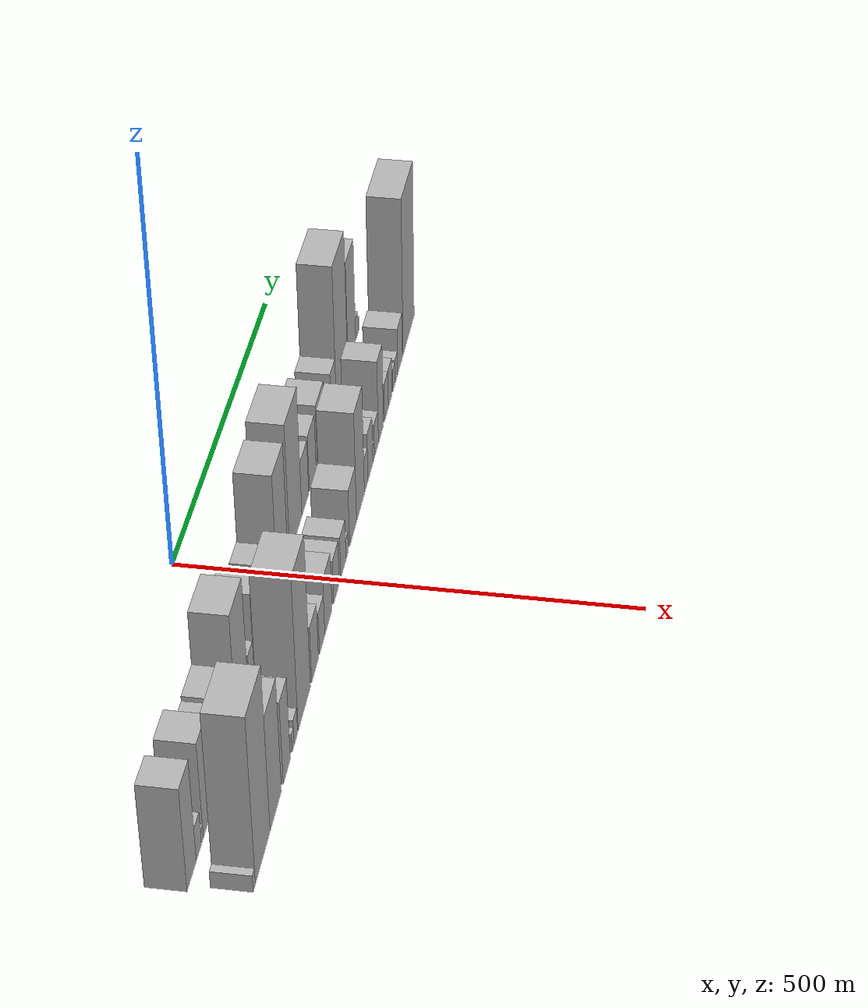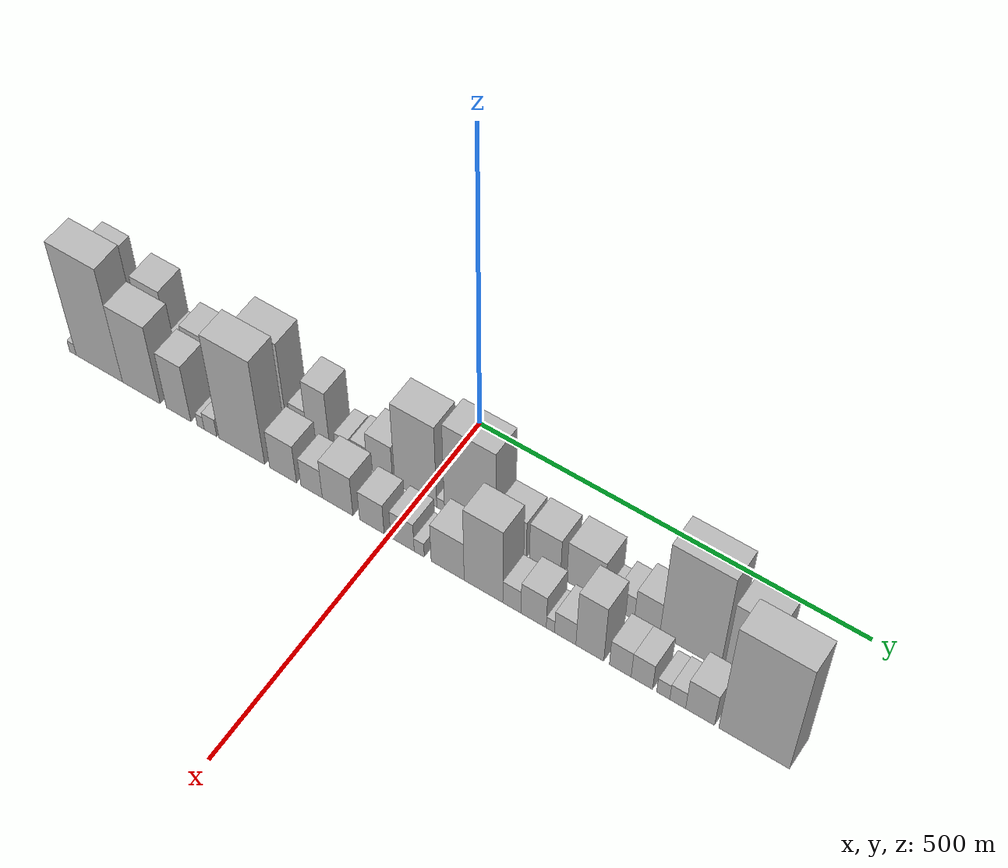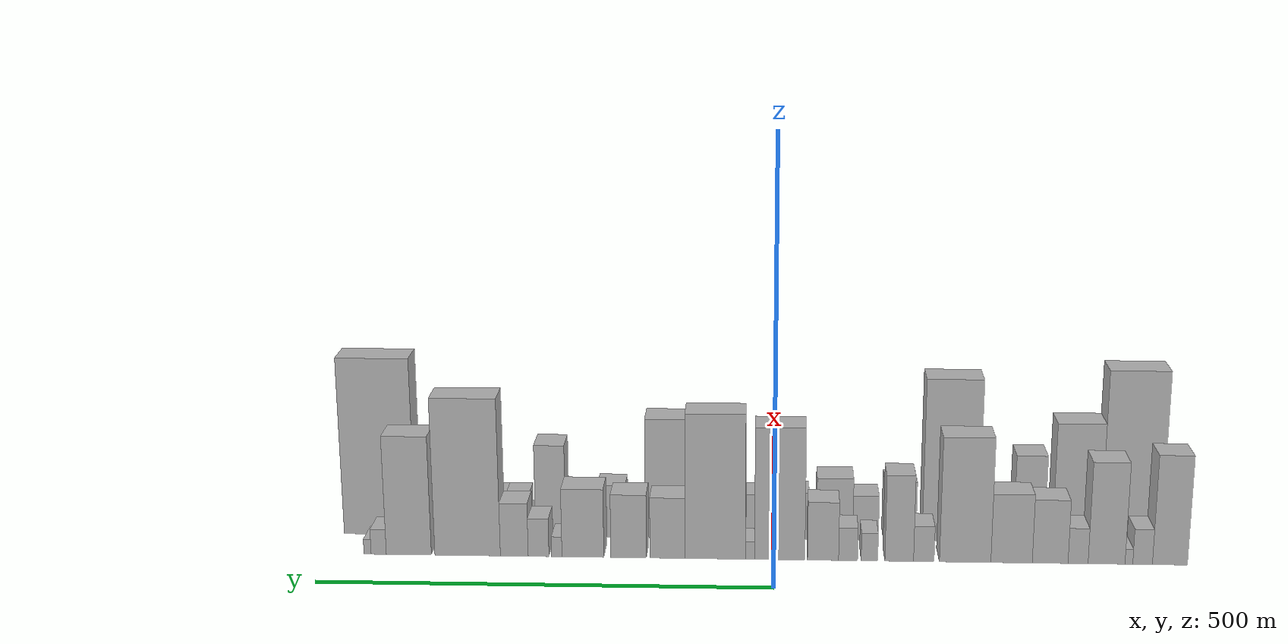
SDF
<sdf version="1.6">
 <world name="default">
  <scene>
   <sky><clouds><speed>12</speed></clouds></sky>
   <ambient>0.4 0.4 0.4 1</ambient>
   <background>0.7 0.7 0.7 1</background>
   <shadows>1</shadows>
  </scene>
  <gravity>0 0 -9.8066</gravity>
  <magnetic_field>6e-06 2.3e-05 -4.2e-05</magnetic_field>
  <physics default="0" name="default_physics" type="ode">
   <ode>
    <solver>
     <type>quick</type>
     <iters>10</iters>
     <sor>1.0</sor>
     <use_dynamic_moi_rescaling>0</use_dynamic_moi_rescaling>
    </solver>
    <constraints>
     <cfm>0</cfm>
     <erp>0.2</erp>
     <contact_max_correcting_vel>100</contact_max_correcting_vel>
     <contact_surface_layer>0.001</contact_surface_layer>
    </constraints>
   </ode>
   <max_step_size>0.004</max_step_size>
   <real_time_factor>1</real_time_factor>
   <real_time_update_rate>250</real_time_update_rate>
  </physics>
  <light name="sun" type="directional">
   <pose>0 0 10 0 0 0</pose>
   <diffuse>0.8 0.8 0.8 1</diffuse>
   <specular>0.2 0.2 0.2 1</specular>
   <attenuation>
    <range>1000</range>
    <constant>0.9</constant>
    <linear>0.01</linear>
    <quadratic>0.001</quadratic>
   </attenuation>
   <direction>-0.5 0.1 -0.9</direction>
  </light>
  <model name="building_1">
   <static>1</static>
   <pose>100.0000 -440.6340 0 0.000000 0.000000 0.000000</pose>
   <link name="link">
    <pose>0 0 64.50 0 0 0</pose>
    <collision name="collision"><geometry><box><size>40.0000 38.7319 129.0000</size></box></geometry></collision>
    <visual name="visual">
     <cast_shadows>0</cast_shadows>
     <geometry><box><size>40.0000 38.7319 129.0000</size></box></geometry>
     <material>
      <script>
       <uri>model://HANNAS_wall/materials/scripts</uri>
       <uri>model://HANNAS_wall/materials/textures</uri>
       <name>vrc/HANNAS_wall</name>
      </script>
     </material>
    </visual>
   </link>
  </model>
  <model name="building_2">
   <static>1</static>
   <pose>100.0000 -410.3808 0 0.000000 0.000000 0.000000</pose>
   <link name="link">
    <pose>0 0 21.00 0 0 0</pose>
    <collision name="collision"><geometry><box><size>40.0000 21.7745 42.0000</size></box></geometry></collision>
    <visual name="visual">
     <cast_shadows>0</cast_shadows>
     <geometry><box><size>40.0000 21.7745 42.0000</size></box></geometry>
     <material>
      <script>
       <uri>model://HANNAS_wall/materials/scripts</uri>
       <uri>model://HANNAS_wall/materials/textures</uri>
       <name>vrc/HANNAS_wall</name>
      </script>
     </material>
    </visual>
   </link>
  </model>
  <model name="building_3">
   <static>1</static>
   <pose>100.0000 -395.1985 0 0.000000 0.000000 0.000000</pose>
   <link name="link">
    <pose>0 0 9.00 0 0 0</pose>
    <collision name="collision"><geometry><box><size>40.0000 8.5901 18.0000</size></box></geometry></collision>
    <visual name="visual">
     <cast_shadows>0</cast_shadows>
     <geometry><box><size>40.0000 8.5901 18.0000</size></box></geometry>
     <material>
      <script>
       <uri>model://HANNAS_wall/materials/scripts</uri>
       <uri>model://HANNAS_wall/materials/textures</uri>
       <name>vrc/HANNAS_wall</name>
      </script>
     </material>
    </visual>
   </link>
  </model>
  <model name="building_4">
   <static>1</static>
   <pose>100.0000 -370.4137 0 0.000000 0.000000 0.000000</pose>
   <link name="link">
    <pose>0 0 60.00 0 0 0</pose>
    <collision name="collision"><geometry><box><size>40.0000 40.9796 120.0000</size></box></geometry></collision>
    <visual name="visual">
     <cast_shadows>0</cast_shadows>
     <geometry><box><size>40.0000 40.9796 120.0000</size></box></geometry>
     <material>
      <script>
       <uri>model://HANNAS_wall/materials/scripts</uri>
       <uri>model://HANNAS_wall/materials/textures</uri>
       <name>vrc/HANNAS_wall</name>
      </script>
     </material>
    </visual>
   </link>
  </model>
  <model name="building_5">
   <static>1</static>
   <pose>100.0000 -338.7981 0 0.000000 0.000000 0.000000</pose>
   <link name="link">
    <pose>0 0 21.00 0 0 0</pose>
    <collision name="collision"><geometry><box><size>40.0000 22.2516 42.0000</size></box></geometry></collision>
    <visual name="visual">
     <cast_shadows>0</cast_shadows>
     <geometry><box><size>40.0000 22.2516 42.0000</size></box></geometry>
     <material>
      <script>
       <uri>model://HANNAS_wall/materials/scripts</uri>
       <uri>model://HANNAS_wall/materials/textures</uri>
       <name>vrc/HANNAS_wall</name>
      </script>
     </material>
    </visual>
   </link>
  </model>
  <model name="building_6">
   <static>1</static>
   <pose>100.0000 -307.7924 0 0.000000 0.000000 0.000000</pose>
   <link name="link">
    <pose>0 0 37.50 0 0 0</pose>
    <collision name="collision"><geometry><box><size>40.0000 39.7598 75.0000</size></box></geometry></collision>
    <visual name="visual">
     <cast_shadows>0</cast_shadows>
     <geometry><box><size>40.0000 39.7598 75.0000</size></box></geometry>
     <material>
      <script>
       <uri>model://HANNAS_wall/materials/scripts</uri>
       <uri>model://HANNAS_wall/materials/textures</uri>
       <name>vrc/HANNAS_wall</name>
      </script>
     </material>
    </visual>
   </link>
  </model>
  <model name="building_7">
   <static>1</static>
   <pose>100.0000 -264.8950 0 0.000000 0.000000 0.000000</pose>
   <link name="link">
    <pose>0 0 40.50 0 0 0</pose>
    <collision name="collision"><geometry><box><size>40.0000 46.0350 81.0000</size></box></geometry></collision>
    <visual name="visual">
     <cast_shadows>0</cast_shadows>
     <geometry><box><size>40.0000 46.0350 81.0000</size></box></geometry>
     <material>
      <script>
       <uri>model://HANNAS_wall/materials/scripts</uri>
       <uri>model://HANNAS_wall/materials/textures</uri>
       <name>vrc/HANNAS_wall</name>
      </script>
     </material>
    </visual>
   </link>
  </model>
  <model name="building_8">
   <static>1</static>
   <pose>100.0000 -213.2292 0 0.000000 0.000000 0.000000</pose>
   <link name="link">
    <pose>0 0 73.50 0 0 0</pose>
    <collision name="collision"><geometry><box><size>40.0000 57.2965 147.0000</size></box></geometry></collision>
    <visual name="visual">
     <cast_shadows>0</cast_shadows>
     <geometry><box><size>40.0000 57.2965 147.0000</size></box></geometry>
     <material>
      <script>
       <uri>model://HANNAS_wall/materials/scripts</uri>
       <uri>model://HANNAS_wall/materials/textures</uri>
       <name>vrc/HANNAS_wall</name>
      </script>
     </material>
    </visual>
   </link>
  </model>
  <model name="building_9">
   <static>1</static>
   <pose>100.0000 -167.1138 0 0.000000 0.000000 0.000000</pose>
   <link name="link">
    <pose>0 0 21.00 0 0 0</pose>
    <collision name="collision"><geometry><box><size>40.0000 22.9344 42.0000</size></box></geometry></collision>
    <visual name="visual">
     <cast_shadows>0</cast_shadows>
     <geometry><box><size>40.0000 22.9344 42.0000</size></box></geometry>
     <material>
      <script>
       <uri>model://HANNAS_wall/materials/scripts</uri>
       <uri>model://HANNAS_wall/materials/textures</uri>
       <name>vrc/HANNAS_wall</name>
      </script>
     </material>
    </visual>
   </link>
  </model>
  <model name="building_10">
   <static>1</static>
   <pose>100.0000 -139.6619 0 0.000000 0.000000 0.000000</pose>
   <link name="link">
    <pose>0 0 51.00 0 0 0</pose>
    <collision name="collision"><geometry><box><size>40.0000 31.9693 102.0000</size></box></geometry></collision>
    <visual name="visual">
     <cast_shadows>0</cast_shadows>
     <geometry><box><size>40.0000 31.9693 102.0000</size></box></geometry>
     <material>
      <script>
       <uri>model://HANNAS_wall/materials/scripts</uri>
       <uri>model://HANNAS_wall/materials/textures</uri>
       <name>vrc/HANNAS_wall</name>
      </script>
     </material>
    </visual>
   </link>
  </model>
  <model name="building_11">
   <static>1</static>
   <pose>100.0000 -106.4075 0 0.000000 0.000000 0.000000</pose>
   <link name="link">
    <pose>0 0 16.50 0 0 0</pose>
    <collision name="collision"><geometry><box><size>40.0000 18.5395 33.0000</size></box></geometry></collision>
    <visual name="visual">
     <cast_shadows>0</cast_shadows>
     <geometry><box><size>40.0000 18.5395 33.0000</size></box></geometry>
     <material>
      <script>
       <uri>model://HANNAS_wall/materials/scripts</uri>
       <uri>model://HANNAS_wall/materials/textures</uri>
       <name>vrc/HANNAS_wall</name>
      </script>
     </material>
    </visual>
   </link>
  </model>
  <model name="building_12">
   <static>1</static>
   <pose>100.0000 -82.4804 0 0.000000 0.000000 0.000000</pose>
   <link name="link">
    <pose>0 0 19.50 0 0 0</pose>
    <collision name="collision"><geometry><box><size>40.0000 21.3147 39.0000</size></box></geometry></collision>
    <visual name="visual">
     <cast_shadows>0</cast_shadows>
     <geometry><box><size>40.0000 21.3147 39.0000</size></box></geometry>
     <material>
      <script>
       <uri>model://HANNAS_wall/materials/scripts</uri>
       <uri>model://HANNAS_wall/materials/textures</uri>
       <name>vrc/HANNAS_wall</name>
      </script>
     </material>
    </visual>
   </link>
  </model>
  <model name="building_13">
   <static>1</static>
   <pose>100.0000 -54.4286 0 0.000000 0.000000 0.000000</pose>
   <link name="link">
    <pose>0 0 34.50 0 0 0</pose>
    <collision name="collision"><geometry><box><size>40.0000 34.7890 69.0000</size></box></geometry></collision>
    <visual name="visual">
     <cast_shadows>0</cast_shadows>
     <geometry><box><size>40.0000 34.7890 69.0000</size></box></geometry>
     <material>
      <script>
       <uri>model://HANNAS_wall/materials/scripts</uri>
       <uri>model://HANNAS_wall/materials/textures</uri>
       <name>vrc/HANNAS_wall</name>
      </script>
     </material>
    </visual>
   </link>
  </model>
  <model name="building_14">
   <static>1</static>
   <pose>100.0000 -5.8567 0 0.000000 0.000000 0.000000</pose>
   <link name="link">
    <pose>0 0 78.00 0 0 0</pose>
    <collision name="collision"><geometry><box><size>40.0000 56.3547 156.0000</size></box></geometry></collision>
    <visual name="visual">
     <cast_shadows>0</cast_shadows>
     <geometry><box><size>40.0000 56.3547 156.0000</size></box></geometry>
     <material>
      <script>
       <uri>model://HANNAS_wall/materials/scripts</uri>
       <uri>model://HANNAS_wall/materials/textures</uri>
       <name>vrc/HANNAS_wall</name>
      </script>
     </material>
    </visual>
   </link>
  </model>
  <model name="building_15">
   <static>1</static>
   <pose>100.0000 27.5183 0 0.000000 0.000000 0.000000</pose>
   <link name="link">
    <pose>0 0 10.50 0 0 0</pose>
    <collision name="collision"><geometry><box><size>40.0000 10.3953 21.0000</size></box></geometry></collision>
    <visual name="visual">
     <cast_shadows>0</cast_shadows>
     <geometry><box><size>40.0000 10.3953 21.0000</size></box></geometry>
     <material>
      <script>
       <uri>model://HANNAS_wall/materials/scripts</uri>
       <uri>model://HANNAS_wall/materials/textures</uri>
       <name>vrc/HANNAS_wall</name>
      </script>
     </material>
    </visual>
   </link>
  </model>
  <model name="building_16">
   <static>1</static>
   <pose>100.0000 66.5081 0 0.000000 0.000000 0.000000</pose>
   <link name="link">
    <pose>0 0 85.50 0 0 0</pose>
    <collision name="collision"><geometry><box><size>40.0000 67.5843 171.0000</size></box></geometry></collision>
    <visual name="visual">
     <cast_shadows>0</cast_shadows>
     <geometry><box><size>40.0000 67.5843 171.0000</size></box></geometry>
     <material>
      <script>
       <uri>model://HANNAS_wall/materials/scripts</uri>
       <uri>model://HANNAS_wall/materials/textures</uri>
       <name>vrc/HANNAS_wall</name>
      </script>
     </material>
    </visual>
   </link>
  </model>
  <model name="building_17">
   <static>1</static>
   <pose>100.0000 120.1196 0 0.000000 0.000000 0.000000</pose>
   <link name="link">
    <pose>0 0 36.00 0 0 0</pose>
    <collision name="collision"><geometry><box><size>40.0000 39.6385 72.0000</size></box></geometry></collision>
    <visual name="visual">
     <cast_shadows>0</cast_shadows>
     <geometry><box><size>40.0000 39.6385 72.0000</size></box></geometry>
     <material>
      <script>
       <uri>model://HANNAS_wall/materials/scripts</uri>
       <uri>model://HANNAS_wall/materials/textures</uri>
       <name>vrc/HANNAS_wall</name>
      </script>
     </material>
    </visual>
   </link>
  </model>
  <model name="building_18">
   <static>1</static>
   <pose>100.0000 163.9868 0 0.000000 0.000000 0.000000</pose>
   <link name="link">
    <pose>0 0 37.50 0 0 0</pose>
    <collision name="collision"><geometry><box><size>40.0000 40.0959 75.0000</size></box></geometry></collision>
    <visual name="visual">
     <cast_shadows>0</cast_shadows>
     <geometry><box><size>40.0000 40.0959 75.0000</size></box></geometry>
     <material>
      <script>
       <uri>model://HANNAS_wall/materials/scripts</uri>
       <uri>model://HANNAS_wall/materials/textures</uri>
       <name>vrc/HANNAS_wall</name>
      </script>
     </material>
    </visual>
   </link>
  </model>
  <model name="building_19">
   <static>1</static>
   <pose>100.0000 215.6951 0 0.000000 0.000000 0.000000</pose>
   <link name="link">
    <pose>0 0 40.50 0 0 0</pose>
    <collision name="collision"><geometry><box><size>40.0000 47.3208 81.0000</size></box></geometry></collision>
    <visual name="visual">
     <cast_shadows>0</cast_shadows>
     <geometry><box><size>40.0000 47.3208 81.0000</size></box></geometry>
     <material>
      <script>
       <uri>model://HANNAS_wall/materials/scripts</uri>
       <uri>model://HANNAS_wall/materials/textures</uri>
       <name>vrc/HANNAS_wall</name>
      </script>
     </material>
    </visual>
   </link>
  </model>
  <model name="building_20">
   <static>1</static>
   <pose>100.0000 245.2109 0 0.000000 0.000000 0.000000</pose>
   <link name="link">
    <pose>0 0 12.00 0 0 0</pose>
    <collision name="collision"><geometry><box><size>40.0000 11.7108 24.0000</size></box></geometry></collision>
    <visual name="visual">
     <cast_shadows>0</cast_shadows>
     <geometry><box><size>40.0000 11.7108 24.0000</size></box></geometry>
     <material>
      <script>
       <uri>model://HANNAS_wall/materials/scripts</uri>
       <uri>model://HANNAS_wall/materials/textures</uri>
       <name>vrc/HANNAS_wall</name>
      </script>
     </material>
    </visual>
   </link>
  </model>
  <model name="building_21">
   <static>1</static>
   <pose>100.0000 265.7919 0 0.000000 0.000000 0.000000</pose>
   <link name="link">
    <pose>0 0 22.50 0 0 0</pose>
    <collision name="collision"><geometry><box><size>40.0000 23.4512 45.0000</size></box></geometry></collision>
    <visual name="visual">
     <cast_shadows>0</cast_shadows>
     <geometry><box><size>40.0000 23.4512 45.0000</size></box></geometry>
     <material>
      <script>
       <uri>model://HANNAS_wall/materials/scripts</uri>
       <uri>model://HANNAS_wall/materials/textures</uri>
       <name>vrc/HANNAS_wall</name>
      </script>
     </material>
    </visual>
   </link>
  </model>
  <model name="building_22">
   <static>1</static>
   <pose>100.0000 293.2767 0 0.000000 0.000000 0.000000</pose>
   <link name="link">
    <pose>0 0 31.50 0 0 0</pose>
    <collision name="collision"><geometry><box><size>40.0000 31.5184 63.0000</size></box></geometry></collision>
    <visual name="visual">
     <cast_shadows>0</cast_shadows>
     <geometry><box><size>40.0000 31.5184 63.0000</size></box></geometry>
     <material>
      <script>
       <uri>model://HANNAS_wall/materials/scripts</uri>
       <uri>model://HANNAS_wall/materials/textures</uri>
       <name>vrc/HANNAS_wall</name>
      </script>
     </material>
    </visual>
   </link>
  </model>
  <model name="building_23">
   <static>1</static>
   <pose>100.0000 346.1778 0 0.000000 0.000000 0.000000</pose>
   <link name="link">
    <pose>0 0 93.00 0 0 0</pose>
    <collision name="collision"><geometry><box><size>40.0000 74.2838 186.0000</size></box></geometry></collision>
    <visual name="visual">
     <cast_shadows>0</cast_shadows>
     <geometry><box><size>40.0000 74.2838 186.0000</size></box></geometry>
     <material>
      <script>
       <uri>model://HANNAS_wall/materials/scripts</uri>
       <uri>model://HANNAS_wall/materials/textures</uri>
       <name>vrc/HANNAS_wall</name>
      </script>
     </material>
    </visual>
   </link>
  </model>
  <model name="building_24">
   <static>1</static>
   <pose>100.0000 412.9397 0 0.000000 0.000000 0.000000</pose>
   <link name="link">
    <pose>0 0 70.50 0 0 0</pose>
    <collision name="collision"><geometry><box><size>40.0000 51.2400 141.0000</size></box></geometry></collision>
    <visual name="visual">
     <cast_shadows>0</cast_shadows>
     <geometry><box><size>40.0000 51.2400 141.0000</size></box></geometry>
     <material>
      <script>
       <uri>model://HANNAS_wall/materials/scripts</uri>
       <uri>model://HANNAS_wall/materials/textures</uri>
       <name>vrc/HANNAS_wall</name>
      </script>
     </material>
    </visual>
   </link>
  </model>
  <model name="building_25">
   <static>1</static>
   <pose>100.0000 447.2016 0 0.000000 0.000000 0.000000</pose>
   <link name="link">
    <pose>0 0 15.00 0 0 0</pose>
    <collision name="collision"><geometry><box><size>40.0000 17.2837 30.0000</size></box></geometry></collision>
    <visual name="visual">
     <cast_shadows>0</cast_shadows>
     <geometry><box><size>40.0000 17.2837 30.0000</size></box></geometry>
     <material>
      <script>
       <uri>model://HANNAS_wall/materials/scripts</uri>
       <uri>model://HANNAS_wall/materials/textures</uri>
       <name>vrc/HANNAS_wall</name>
      </script>
     </material>
    </visual>
   </link>
  </model>
  <model name="building_26">
   <static>1</static>
   <pose>100.0000 459.8907 0 0.000000 0.000000 0.000000</pose>
   <link name="link">
    <pose>0 0 9.00 0 0 0</pose>
    <collision name="collision"><geometry><box><size>40.0000 8.0946 18.0000</size></box></geometry></collision>
    <visual name="visual">
     <cast_shadows>0</cast_shadows>
     <geometry><box><size>40.0000 8.0946 18.0000</size></box></geometry>
     <material>
      <script>
       <uri>model://HANNAS_wall/materials/scripts</uri>
       <uri>model://HANNAS_wall/materials/textures</uri>
       <name>vrc/HANNAS_wall</name>
      </script>
     </material>
    </visual>
   </link>
  </model>
  <model name="building_27">
   <static>1</static>
   <pose>160.0000 -447.1435 0 0.000000 0.000000 0.000000</pose>
   <link name="link">
    <pose>0 0 10.50 0 0 0</pose>
    <collision name="collision"><geometry><box><size>40.0000 9.7131 21.0000</size></box></geometry></collision>
    <visual name="visual">
     <cast_shadows>0</cast_shadows>
     <geometry><box><size>40.0000 9.7131 21.0000</size></box></geometry>
     <material>
      <script>
       <uri>model://HANNAS_wall/materials/scripts</uri>
       <uri>model://HANNAS_wall/materials/textures</uri>
       <name>vrc/HANNAS_wall</name>
      </script>
     </material>
    </visual>
   </link>
  </model>
  <model name="building_28">
   <static>1</static>
   <pose>160.0000 -407.9220 0 0.000000 0.000000 0.000000</pose>
   <link name="link">
    <pose>0 0 103.50 0 0 0</pose>
    <collision name="collision"><geometry><box><size>40.0000 68.7298 207.0000</size></box></geometry></collision>
    <visual name="visual">
     <cast_shadows>0</cast_shadows>
     <geometry><box><size>40.0000 68.7298 207.0000</size></box></geometry>
     <material>
      <script>
       <uri>model://HANNAS_wall/materials/scripts</uri>
       <uri>model://HANNAS_wall/materials/textures</uri>
       <name>vrc/HANNAS_wall</name>
      </script>
     </material>
    </visual>
   </link>
  </model>
  <model name="building_29">
   <static>1</static>
   <pose>160.0000 -346.0735 0 0.000000 0.000000 0.000000</pose>
   <link name="link">
    <pose>0 0 72.00 0 0 0</pose>
    <collision name="collision"><geometry><box><size>40.0000 54.9673 144.0000</size></box></geometry></collision>
    <visual name="visual">
     <cast_shadows>0</cast_shadows>
     <geometry><box><size>40.0000 54.9673 144.0000</size></box></geometry>
     <material>
      <script>
       <uri>model://HANNAS_wall/materials/scripts</uri>
       <uri>model://HANNAS_wall/materials/textures</uri>
       <name>vrc/HANNAS_wall</name>
      </script>
     </material>
    </visual>
   </link>
  </model>
  <model name="building_30">
   <static>1</static>
   <pose>160.0000 -291.8656 0 0.000000 0.000000 0.000000</pose>
   <link name="link">
    <pose>0 0 52.50 0 0 0</pose>
    <collision name="collision"><geometry><box><size>40.0000 35.4483 105.0000</size></box></geometry></collision>
    <visual name="visual">
     <cast_shadows>0</cast_shadows>
     <geometry><box><size>40.0000 35.4483 105.0000</size></box></geometry>
     <material>
      <script>
       <uri>model://HANNAS_wall/materials/scripts</uri>
       <uri>model://HANNAS_wall/materials/textures</uri>
       <name>vrc/HANNAS_wall</name>
      </script>
     </material>
    </visual>
   </link>
  </model>
  <model name="building_31">
   <static>1</static>
   <pose>160.0000 -260.1148 0 0.000000 0.000000 0.000000</pose>
   <link name="link">
    <pose>0 0 12.00 0 0 0</pose>
    <collision name="collision"><geometry><box><size>40.0000 10.0533 24.0000</size></box></geometry></collision>
    <visual name="visual">
     <cast_shadows>0</cast_shadows>
     <geometry><box><size>40.0000 10.0533 24.0000</size></box></geometry>
     <material>
      <script>
       <uri>model://HANNAS_wall/materials/scripts</uri>
       <uri>model://HANNAS_wall/materials/textures</uri>
       <name>vrc/HANNAS_wall</name>
      </script>
     </material>
    </visual>
   </link>
  </model>
  <model name="building_32">
   <static>1</static>
   <pose>160.0000 -246.1488 0 0.000000 0.000000 0.000000</pose>
   <link name="link">
    <pose>0 0 16.50 0 0 0</pose>
    <collision name="collision"><geometry><box><size>40.0000 17.8788 33.0000</size></box></geometry></collision>
    <visual name="visual">
     <cast_shadows>0</cast_shadows>
     <geometry><box><size>40.0000 17.8788 33.0000</size></box></geometry>
     <material>
      <script>
       <uri>model://HANNAS_wall/materials/scripts</uri>
       <uri>model://HANNAS_wall/materials/textures</uri>
       <name>vrc/HANNAS_wall</name>
      </script>
     </material>
    </visual>
   </link>
  </model>
  <model name="building_33">
   <static>1</static>
   <pose>160.0000 -201.9175 0 0.000000 0.000000 0.000000</pose>
   <link name="link">
    <pose>0 0 97.50 0 0 0</pose>
    <collision name="collision"><geometry><box><size>40.0000 64.5837 195.0000</size></box></geometry></collision>
    <visual name="visual">
     <cast_shadows>0</cast_shadows>
     <geometry><box><size>40.0000 64.5837 195.0000</size></box></geometry>
     <material>
      <script>
       <uri>model://HANNAS_wall/materials/scripts</uri>
       <uri>model://HANNAS_wall/materials/textures</uri>
       <name>vrc/HANNAS_wall</name>
      </script>
     </material>
    </visual>
   </link>
  </model>
  <model name="building_34">
   <static>1</static>
   <pose>160.0000 -144.0552 0 0.000000 0.000000 0.000000</pose>
   <link name="link">
    <pose>0 0 36.00 0 0 0</pose>
    <collision name="collision"><geometry><box><size>40.0000 37.1408 72.0000</size></box></geometry></collision>
    <visual name="visual">
     <cast_shadows>0</cast_shadows>
     <geometry><box><size>40.0000 37.1408 72.0000</size></box></geometry>
     <material>
      <script>
       <uri>model://HANNAS_wall/materials/scripts</uri>
       <uri>model://HANNAS_wall/materials/textures</uri>
       <name>vrc/HANNAS_wall</name>
      </script>
     </material>
    </visual>
   </link>
  </model>
  <model name="building_35">
   <static>1</static>
   <pose>160.0000 -104.7615 0 0.000000 0.000000 0.000000</pose>
   <link name="link">
    <pose>0 0 27.00 0 0 0</pose>
    <collision name="collision"><geometry><box><size>40.0000 29.4467 54.0000</size></box></geometry></collision>
    <visual name="visual">
     <cast_shadows>0</cast_shadows>
     <geometry><box><size>40.0000 29.4467 54.0000</size></box></geometry>
     <material>
      <script>
       <uri>model://HANNAS_wall/materials/scripts</uri>
       <uri>model://HANNAS_wall/materials/textures</uri>
       <name>vrc/HANNAS_wall</name>
      </script>
     </material>
    </visual>
   </link>
  </model>
  <model name="building_36">
   <static>1</static>
   <pose>160.0000 -69.1810 0 0.000000 0.000000 0.000000</pose>
   <link name="link">
    <pose>0 0 37.50 0 0 0</pose>
    <collision name="collision"><geometry><box><size>40.0000 41.7143 75.0000</size></box></geometry></collision>
    <visual name="visual">
     <cast_shadows>0</cast_shadows>
     <geometry><box><size>40.0000 41.7143 75.0000</size></box></geometry>
     <material>
      <script>
       <uri>model://HANNAS_wall/materials/scripts</uri>
       <uri>model://HANNAS_wall/materials/textures</uri>
       <name>vrc/HANNAS_wall</name>
      </script>
     </material>
    </visual>
   </link>
  </model>
  <model name="building_37">
   <static>1</static>
   <pose>160.0000 -22.8754 0 0.000000 0.000000 0.000000</pose>
   <link name="link">
    <pose>0 0 28.50 0 0 0</pose>
    <collision name="collision"><geometry><box><size>40.0000 32.8969 57.0000</size></box></geometry></collision>
    <visual name="visual">
     <cast_shadows>0</cast_shadows>
     <geometry><box><size>40.0000 32.8969 57.0000</size></box></geometry>
     <material>
      <script>
       <uri>model://HANNAS_wall/materials/scripts</uri>
       <uri>model://HANNAS_wall/materials/textures</uri>
       <name>vrc/HANNAS_wall</name>
      </script>
     </material>
    </visual>
   </link>
  </model>
  <model name="building_38">
   <static>1</static>
   <pose>160.0000 18.0948 0 0.000000 0.000000 0.000000</pose>
   <link name="link">
    <pose>0 0 27.00 0 0 0</pose>
    <collision name="collision"><geometry><box><size>40.0000 31.0434 54.0000</size></box></geometry></collision>
    <visual name="visual">
     <cast_shadows>0</cast_shadows>
     <geometry><box><size>40.0000 31.0434 54.0000</size></box></geometry>
     <material>
      <script>
       <uri>model://HANNAS_wall/materials/scripts</uri>
       <uri>model://HANNAS_wall/materials/textures</uri>
       <name>vrc/HANNAS_wall</name>
      </script>
     </material>
    </visual>
   </link>
  </model>
  <model name="building_39">
   <static>1</static>
   <pose>160.0000 40.2983 0 0.000000 0.000000 0.000000</pose>
   <link name="link">
    <pose>0 0 13.50 0 0 0</pose>
    <collision name="collision"><geometry><box><size>40.0000 13.3636 27.0000</size></box></geometry></collision>
    <visual name="visual">
     <cast_shadows>0</cast_shadows>
     <geometry><box><size>40.0000 13.3636 27.0000</size></box></geometry>
     <material>
      <script>
       <uri>model://HANNAS_wall/materials/scripts</uri>
       <uri>model://HANNAS_wall/materials/textures</uri>
       <name>vrc/HANNAS_wall</name>
      </script>
     </material>
    </visual>
   </link>
  </model>
  <model name="building_40">
   <static>1</static>
   <pose>160.0000 77.5541 0 0.000000 0.000000 0.000000</pose>
   <link name="link">
    <pose>0 0 37.50 0 0 0</pose>
    <collision name="collision"><geometry><box><size>40.0000 43.1480 75.0000</size></box></geometry></collision>
    <visual name="visual">
     <cast_shadows>0</cast_shadows>
     <geometry><box><size>40.0000 43.1480 75.0000</size></box></geometry>
     <material>
      <script>
       <uri>model://HANNAS_wall/materials/scripts</uri>
       <uri>model://HANNAS_wall/materials/textures</uri>
       <name>vrc/HANNAS_wall</name>
      </script>
     </material>
    </visual>
   </link>
  </model>
  <model name="building_41">
   <static>1</static>
   <pose>160.0000 124.1093 0 0.000000 0.000000 0.000000</pose>
   <link name="link">
    <pose>0 0 72.00 0 0 0</pose>
    <collision name="collision"><geometry><box><size>40.0000 49.9624 144.0000</size></box></geometry></collision>
    <visual name="visual">
     <cast_shadows>0</cast_shadows>
     <geometry><box><size>40.0000 49.9624 144.0000</size></box></geometry>
     <material>
      <script>
       <uri>model://HANNAS_wall/materials/scripts</uri>
       <uri>model://HANNAS_wall/materials/textures</uri>
       <name>vrc/HANNAS_wall</name>
      </script>
     </material>
    </visual>
   </link>
  </model>
  <model name="building_42">
   <static>1</static>
   <pose>160.0000 160.6854 0 0.000000 0.000000 0.000000</pose>
   <link name="link">
    <pose>0 0 22.50 0 0 0</pose>
    <collision name="collision"><geometry><box><size>40.0000 23.1897 45.0000</size></box></geometry></collision>
    <visual name="visual">
     <cast_shadows>0</cast_shadows>
     <geometry><box><size>40.0000 23.1897 45.0000</size></box></geometry>
     <material>
      <script>
       <uri>model://HANNAS_wall/materials/scripts</uri>
       <uri>model://HANNAS_wall/materials/textures</uri>
       <name>vrc/HANNAS_wall</name>
      </script>
     </material>
    </visual>
   </link>
  </model>
  <model name="building_43">
   <static>1</static>
   <pose>160.0000 188.3637 0 0.000000 0.000000 0.000000</pose>
   <link name="link">
    <pose>0 0 31.50 0 0 0</pose>
    <collision name="collision"><geometry><box><size>40.0000 32.1671 63.0000</size></box></geometry></collision>
    <visual name="visual">
     <cast_shadows>0</cast_shadows>
     <geometry><box><size>40.0000 32.1671 63.0000</size></box></geometry>
     <material>
      <script>
       <uri>model://HANNAS_wall/materials/scripts</uri>
       <uri>model://HANNAS_wall/materials/textures</uri>
       <name>vrc/HANNAS_wall</name>
      </script>
     </material>
    </visual>
   </link>
  </model>
  <model name="building_44">
   <static>1</static>
   <pose>160.0000 209.7077 0 0.000000 0.000000 0.000000</pose>
   <link name="link">
    <pose>0 0 12.00 0 0 0</pose>
    <collision name="collision"><geometry><box><size>40.0000 10.5209 24.0000</size></box></geometry></collision>
    <visual name="visual">
     <cast_shadows>0</cast_shadows>
     <geometry><box><size>40.0000 10.5209 24.0000</size></box></geometry>
     <material>
      <script>
       <uri>model://HANNAS_wall/materials/scripts</uri>
       <uri>model://HANNAS_wall/materials/textures</uri>
       <name>vrc/HANNAS_wall</name>
      </script>
     </material>
    </visual>
   </link>
  </model>
  <model name="building_45">
   <static>1</static>
   <pose>160.0000 228.3208 0 0.000000 0.000000 0.000000</pose>
   <link name="link">
    <pose>0 0 22.50 0 0 0</pose>
    <collision name="collision"><geometry><box><size>40.0000 26.7052 45.0000</size></box></geometry></collision>
    <visual name="visual">
     <cast_shadows>0</cast_shadows>
     <geometry><box><size>40.0000 26.7052 45.0000</size></box></geometry>
     <material>
      <script>
       <uri>model://HANNAS_wall/materials/scripts</uri>
       <uri>model://HANNAS_wall/materials/textures</uri>
       <name>vrc/HANNAS_wall</name>
      </script>
     </material>
    </visual>
   </link>
  </model>
  <model name="building_46">
   <static>1</static>
   <pose>160.0000 259.0730 0 0.000000 0.000000 0.000000</pose>
   <link name="link">
    <pose>0 0 55.50 0 0 0</pose>
    <collision name="collision"><geometry><box><size>40.0000 34.7992 111.0000</size></box></geometry></collision>
    <visual name="visual">
     <cast_shadows>0</cast_shadows>
     <geometry><box><size>40.0000 34.7992 111.0000</size></box></geometry>
     <material>
      <script>
       <uri>model://HANNAS_wall/materials/scripts</uri>
       <uri>model://HANNAS_wall/materials/textures</uri>
       <name>vrc/HANNAS_wall</name>
      </script>
     </material>
    </visual>
   </link>
  </model>
  <model name="building_47">
   <static>1</static>
   <pose>160.0000 296.8585 0 0.000000 0.000000 0.000000</pose>
   <link name="link">
    <pose>0 0 25.50 0 0 0</pose>
    <collision name="collision"><geometry><box><size>40.0000 26.7717 51.0000</size></box></geometry></collision>
    <visual name="visual">
     <cast_shadows>0</cast_shadows>
     <geometry><box><size>40.0000 26.7717 51.0000</size></box></geometry>
     <material>
      <script>
       <uri>model://HANNAS_wall/materials/scripts</uri>
       <uri>model://HANNAS_wall/materials/textures</uri>
       <name>vrc/HANNAS_wall</name>
      </script>
     </material>
    </visual>
   </link>
  </model>
  <model name="building_48">
   <static>1</static>
   <pose>160.0000 323.3542 0 0.000000 0.000000 0.000000</pose>
   <link name="link">
    <pose>0 0 25.50 0 0 0</pose>
    <collision name="collision"><geometry><box><size>40.0000 26.2198 51.0000</size></box></geometry></collision>
    <visual name="visual">
     <cast_shadows>0</cast_shadows>
     <geometry><box><size>40.0000 26.2198 51.0000</size></box></geometry>
     <material>
      <script>
       <uri>model://HANNAS_wall/materials/scripts</uri>
       <uri>model://HANNAS_wall/materials/textures</uri>
       <name>vrc/HANNAS_wall</name>
      </script>
     </material>
    </visual>
   </link>
  </model>
  <model name="building_49">
   <static>1</static>
   <pose>160.0000 349.4036 0 0.000000 0.000000 0.000000</pose>
   <link name="link">
    <pose>0 0 15.00 0 0 0</pose>
    <collision name="collision"><geometry><box><size>40.0000 15.8789 30.0000</size></box></geometry></collision>
    <visual name="visual">
     <cast_shadows>0</cast_shadows>
     <geometry><box><size>40.0000 15.8789 30.0000</size></box></geometry>
     <material>
      <script>
       <uri>model://HANNAS_wall/materials/scripts</uri>
       <uri>model://HANNAS_wall/materials/textures</uri>
       <name>vrc/HANNAS_wall</name>
      </script>
     </material>
    </visual>
   </link>
  </model>
  <model name="building_50">
   <static>1</static>
   <pose>160.0000 366.9161 0 0.000000 0.000000 0.000000</pose>
   <link name="link">
    <pose>0 0 16.50 0 0 0</pose>
    <collision name="collision"><geometry><box><size>40.0000 19.1460 33.0000</size></box></geometry></collision>
    <visual name="visual">
     <cast_shadows>0</cast_shadows>
     <geometry><box><size>40.0000 19.1460 33.0000</size></box></geometry>
     <material>
      <script>
       <uri>model://HANNAS_wall/materials/scripts</uri>
       <uri>model://HANNAS_wall/materials/textures</uri>
       <name>vrc/HANNAS_wall</name>
      </script>
     </material>
    </visual>
   </link>
  </model>
  <model name="building_51">
   <static>1</static>
   <pose>160.0000 393.9212 0 0.000000 0.000000 0.000000</pose>
   <link name="link">
    <pose>0 0 31.50 0 0 0</pose>
    <collision name="collision"><geometry><box><size>40.0000 34.8642 63.0000</size></box></geometry></collision>
    <visual name="visual">
     <cast_shadows>0</cast_shadows>
     <geometry><box><size>40.0000 34.8642 63.0000</size></box></geometry>
     <material>
      <script>
       <uri>model://HANNAS_wall/materials/scripts</uri>
       <uri>model://HANNAS_wall/materials/textures</uri>
       <name>vrc/HANNAS_wall</name>
      </script>
     </material>
    </visual>
   </link>
  </model>
  <model name="building_52">
   <static>1</static>
   <pose>160.0000 458.1103 0 0.000000 0.000000 0.000000</pose>
   <link name="link">
    <pose>0 0 106.50 0 0 0</pose>
    <collision name="collision"><geometry><box><size>40.0000 83.5142 213.0000</size></box></geometry></collision>
    <visual name="visual">
     <cast_shadows>0</cast_shadows>
     <geometry><box><size>40.0000 83.5142 213.0000</size></box></geometry>
     <material>
      <script>
       <uri>model://HANNAS_wall/materials/scripts</uri>
       <uri>model://HANNAS_wall/materials/textures</uri>
       <name>vrc/HANNAS_wall</name>
      </script>
     </material>
    </visual>
   </link>
  </model>
 </world>
</sdf>
